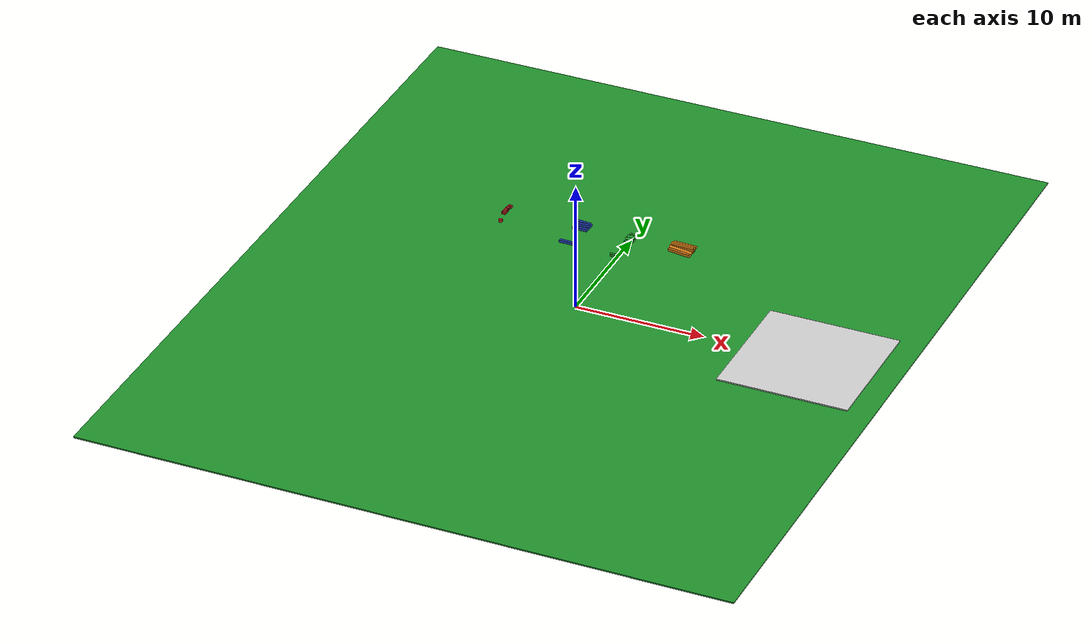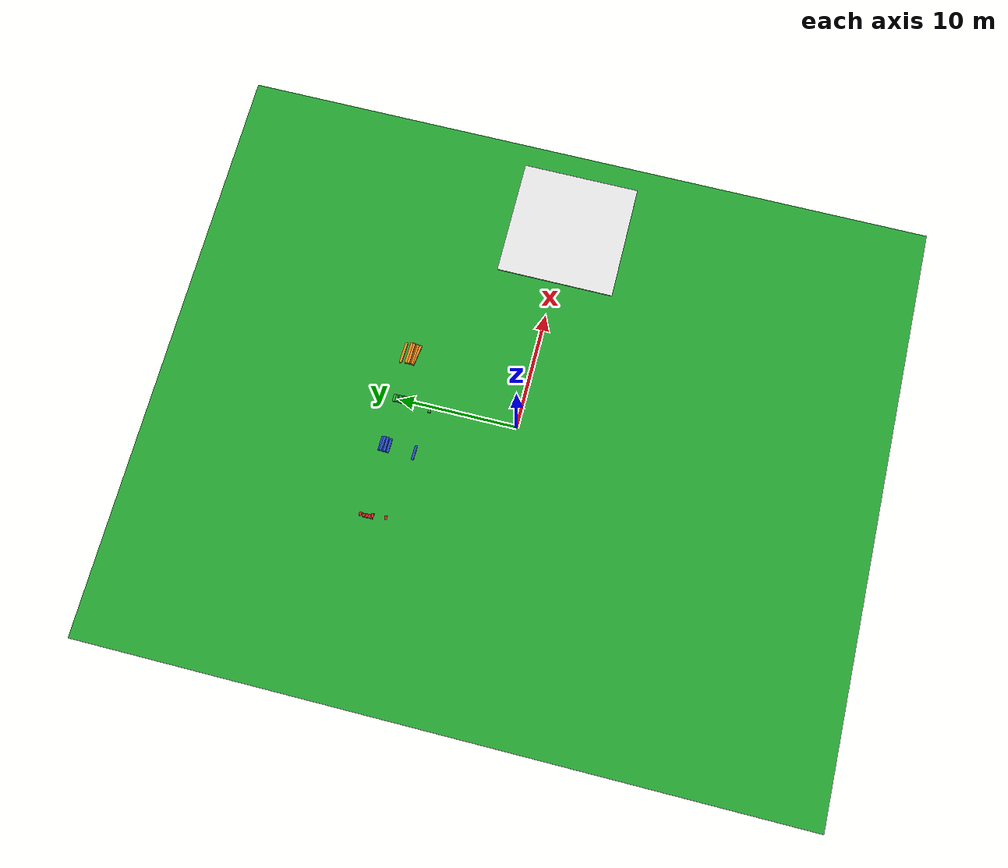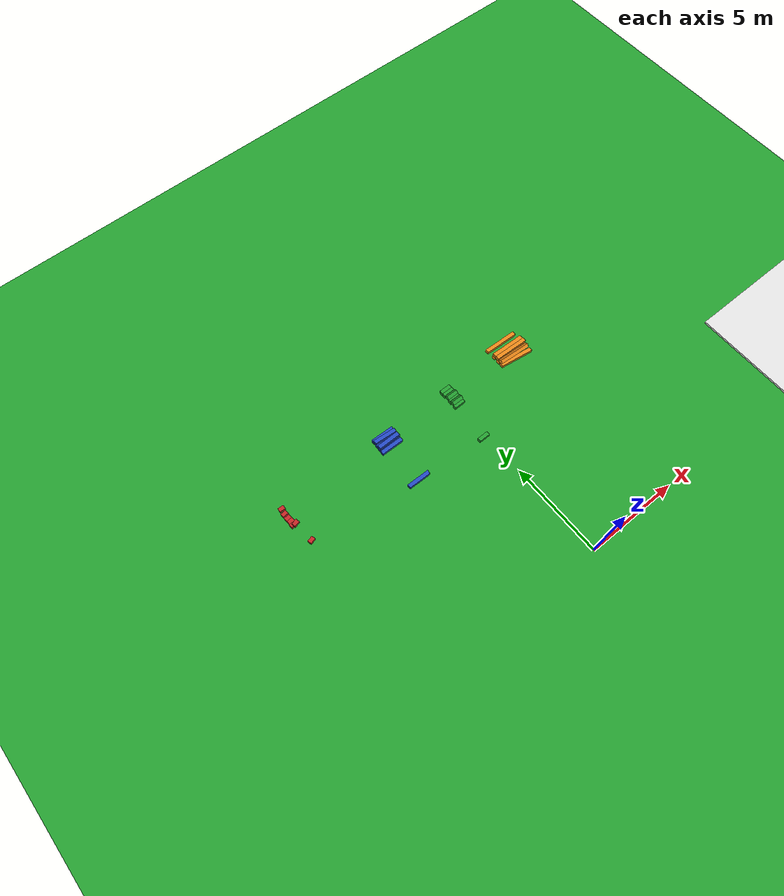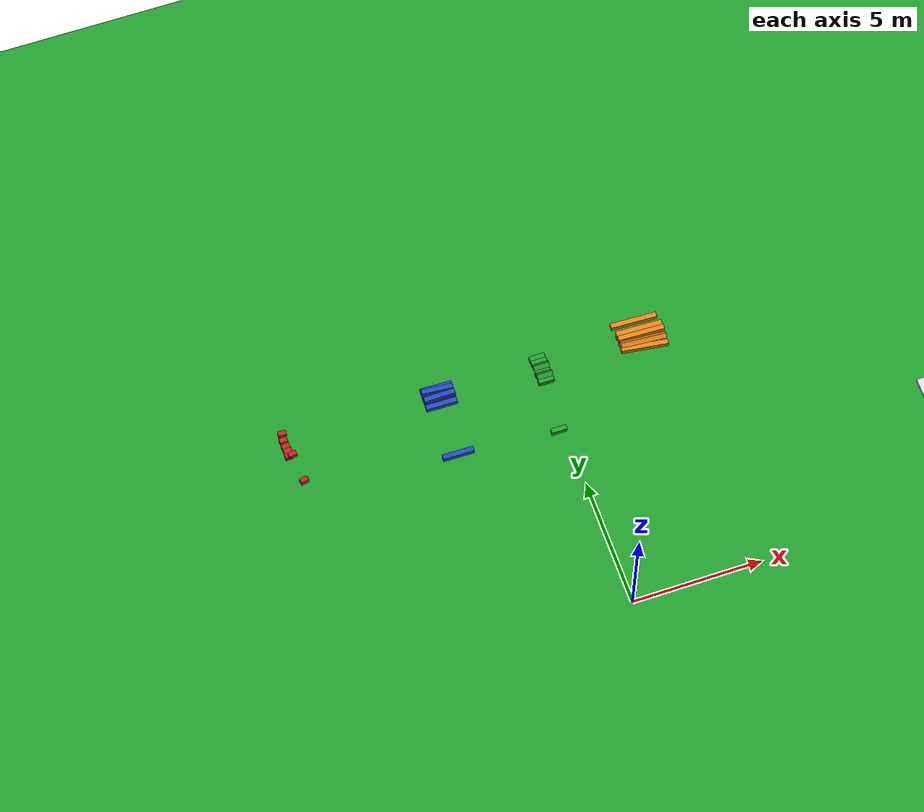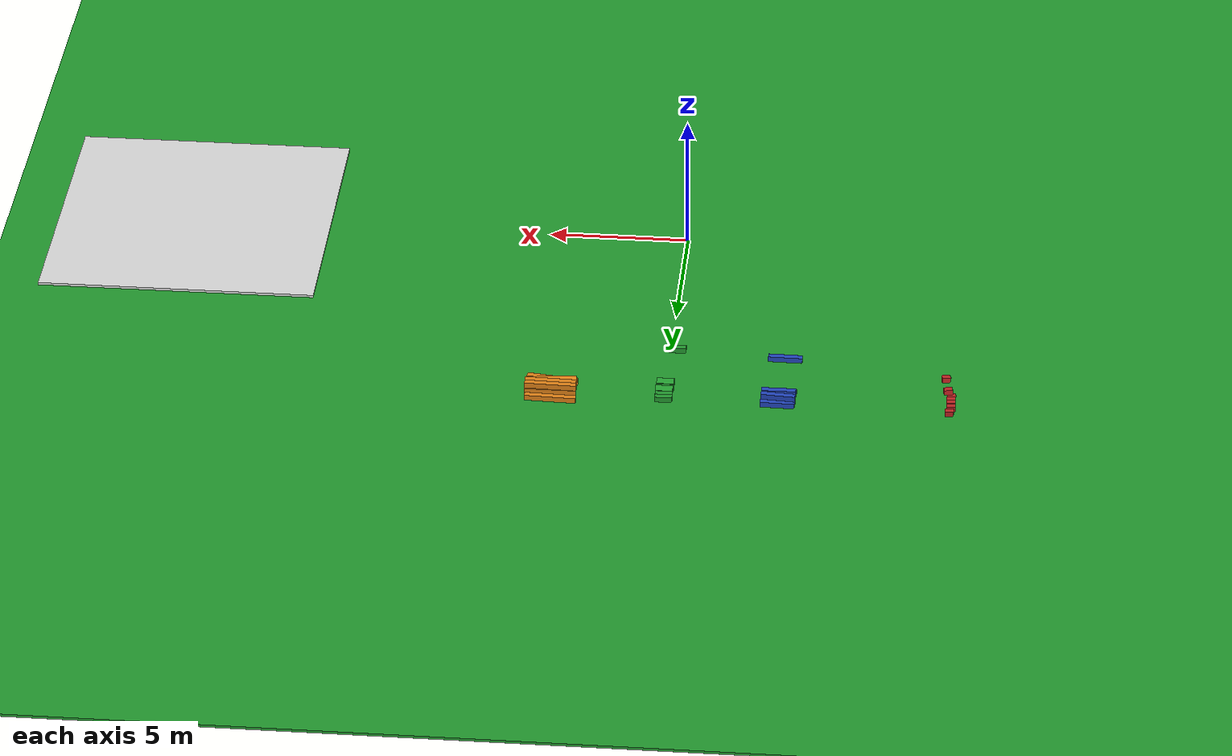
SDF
<sdf version="1.6">
 <world name="default">
  <scene>
   <sky><clouds><speed>12</speed></clouds></sky>
   <ambient>0.4 0.4 0.4 1</ambient>
   <background>0.7 0.7 0.7 1</background>
   <shadows>1</shadows>
  </scene>
  <light name="sun" type="directional">
   <pose>0 0 10 0 -0 0</pose>
   <diffuse>0.8 0.8 0.8 1</diffuse>
   <specular>0.2 0.2 0.2 1</specular>
   <attenuation>
    <range>1000</range>
    <constant>0.9</constant>
    <linear>0.01</linear>
    <quadratic>0.001</quadratic>
   </attenuation>
   <direction>-0.5 0.1 -0.9</direction>
  </light>
  <gravity>0 0 -9.8</gravity>
  <magnetic_field>6e-06 2.3e-05 -4.2e-05</magnetic_field>
  <atmosphere type="adiabatic"/>
  <physics name="default_physics" default="0" type="ode">
   <max_step_size>0.001</max_step_size>
   <real_time_factor>1</real_time_factor>
   <real_time_update_rate>1000</real_time_update_rate>
  </physics>
  <scene><ambient>0.4 0.4 0.4 1</ambient><background>0.7 0.7 0.7 1</background><shadows>1</shadows></scene>
  <spherical_coordinates>
   <surface_model>EARTH_WGS84</surface_model>
   <latitude_deg>0</latitude_deg>
   <longitude_deg>0</longitude_deg>
   <elevation>0</elevation>
   <heading_deg>0</heading_deg>
  </spherical_coordinates>
  <model name="Arena50x60">
   <link name="link_0">
    <inertial>
     <mass>1</mass>
     <inertia>
      <ixx>0.166667</ixx>
      <ixy>0</ixy>
      <ixz>0</ixz>
      <iyy>0.166667</iyy>
      <iyz>0</iyz>
      <izz>0.166667</izz>
     </inertia>
    </inertial>
    <visual name="base_visual">
     <geometry><mesh><uri>/home/varun/MBZIRC_Arena/Arena50x60.dae</uri><scale>1 1 1</scale></mesh></geometry>
     <material>
      <lighting>1</lighting>
      <script><name>Gazebo/Green</name><uri>file://media/materials/scripts/gazebo.material</uri></script>
     </material>
    </visual>
    <collision name="collision">
     <geometry><mesh><uri>/home/varun/MBZIRC_Arena/Arena50x60.dae</uri><scale>1 1 1</scale></mesh></geometry>
     <surface>
      <friction>
       <ode><mu>1</mu><mu2>1</mu2><fdir1>0 0 0</fdir1><slip1>0</slip1><slip2>0</slip2></ode>
       <torsional>
        <coefficient>1</coefficient>
        <patch_radius>0</patch_radius>
        <surface_radius>0</surface_radius>
        <use_patch_radius>1</use_patch_radius>
        <ode><slip>0</slip></ode>
       </torsional>
      </friction>
      <bounce><restitution_coefficient>0</restitution_coefficient><threshold>1e+06</threshold></bounce>
      <contact>
       <collide_without_contact>0</collide_without_contact>
       <collide_without_contact_bitmask>1</collide_without_contact_bitmask>
       <collide_bitmask>1</collide_bitmask>
       <ode>
        <soft_cfm>0</soft_cfm>
        <soft_erp>0.2</soft_erp>
        <kp>1e+13</kp>
        <kd>1</kd>
        <max_vel>0.01</max_vel>
        <min_depth>0</min_depth>
       </ode>
       <bullet>
        <split_impulse>1</split_impulse>
        <split_impulse_penetration_threshold>-0.01</split_impulse_penetration_threshold>
        <soft_cfm>0</soft_cfm>
        <soft_erp>0.2</soft_erp>
        <kp>1e+13</kp>
        <kd>1</kd>
       </bullet>
      </contact>
     </surface>
    </collision>
   </link>
   <link name="link_1">
    <pose>18.0957 0 0.1 0 -0 0</pose>
    <inertial>
     <mass>1</mass>
     <inertia>
      <ixx>0.166667</ixx>
      <ixy>0</ixy>
      <ixz>0</ixz>
      <iyy>0.166667</iyy>
      <iyz>0</iyz>
      <izz>0.166667</izz>
     </inertia>
    </inertial>
    <visual name="visual">
     <geometry><mesh><uri>/home/varun/MBZIRC_Arena/StartLocation.dae</uri><scale>1 1 1</scale></mesh></geometry>
     <material>
      <lighting>1</lighting>
      <script><uri>file://media/materials/scripts/gazebo.material</uri><name>Gazebo/White</name></script>
      <ambient>0.3 0.3 0.3 1</ambient>
      <diffuse>0.7 0.7 0.7 1</diffuse>
      <specular>0.01 0.01 0.01 1</specular>
      <emissive>0 0 0 1</emissive>
      <shader type="vertex"><normal_map>__default__</normal_map></shader>
     </material>
    </visual>
    <collision name="collision">
     <geometry><mesh><uri>/home/varun/MBZIRC_Arena/StartLocation.dae</uri><scale>1 1 1</scale></mesh></geometry>
     <surface>
      <friction>
       <ode><mu>1</mu><mu2>1</mu2><fdir1>0 0 0</fdir1><slip1>0</slip1><slip2>0</slip2></ode>
       <torsional>
        <coefficient>1</coefficient>
        <patch_radius>0</patch_radius>
        <surface_radius>0</surface_radius>
        <use_patch_radius>1</use_patch_radius>
        <ode><slip>0</slip></ode>
       </torsional>
      </friction>
      <bounce><restitution_coefficient>0</restitution_coefficient><threshold>1e+06</threshold></bounce>
      <contact>
       <collide_without_contact>0</collide_without_contact>
       <collide_without_contact_bitmask>1</collide_without_contact_bitmask>
       <collide_bitmask>1</collide_bitmask>
       <ode>
        <soft_cfm>0</soft_cfm>
        <soft_erp>0.2</soft_erp>
        <kp>1e+13</kp>
        <kd>1</kd>
        <max_vel>0.01</max_vel>
        <min_depth>0</min_depth>
       </ode>
       <bullet>
        <split_impulse>1</split_impulse>
        <split_impulse_penetration_threshold>-0.01</split_impulse_penetration_threshold>
        <soft_cfm>0</soft_cfm>
        <soft_erp>0.2</soft_erp>
        <kp>1e+13</kp>
        <kd>1</kd>
       </bullet>
      </contact>
     </surface>
    </collision>
   </link>
   <static>1</static>
  </model>
  <model name="Red Brick 0">
   <link name="base">
    <inertial>
     <mass>1</mass>
     <inertia>
      <ixx>0.00666667</ixx>
      <ixy>0</ixy>
      <ixz>0</ixz>
      <iyy>0.0108333</iyy>
      <iyz>0</iyz>
      <izz>0.0108333</izz>
     </inertia>
    </inertial>
    <collision name="base_collision"><geometry><box><size>0.3 0.2 0.2</size></box></geometry></collision>
    <visual name="base_visual">
     <geometry><box><size>0.3 0.2 0.2</size></box></geometry>
     <material>
      <script><name>Gazebo/Red</name><uri>file://media/materials/scripts/gazebo.material</uri></script>
     </material>
    </visual>
   </link>
   <pose>-10.0364 10.1873 0.2 0 -0 0.051215</pose>
  </model>
  <model name="Red Brick 1">
   <link name="base">
    <inertial>
     <mass>1</mass>
     <inertia>
      <ixx>0.00666667</ixx>
      <ixy>0</ixy>
      <ixz>0</ixz>
      <iyy>0.0108333</iyy>
      <iyz>0</iyz>
      <izz>0.0108333</izz>
     </inertia>
    </inertial>
    <collision name="base_collision"><geometry><box><size>0.3 0.2 0.2</size></box></geometry></collision>
    <visual name="base_visual">
     <geometry><box><size>0.3 0.2 0.2</size></box></geometry>
     <material>
      <script><name>Gazebo/Red</name><uri>file://media/materials/scripts/gazebo.material</uri></script>
     </material>
    </visual>
   </link>
   <pose>-10.0298 9.92537 0.2 1.5708 1e-06 0.056731</pose>
  </model>
  <model name="Red Brick 2">
   <link name="base">
    <inertial>
     <mass>1</mass>
     <inertia>
      <ixx>0.00666667</ixx>
      <ixy>0</ixy>
      <ixz>0</ixz>
      <iyy>0.0108333</iyy>
      <iyz>0</iyz>
      <izz>0.0108333</izz>
     </inertia>
    </inertial>
    <collision name="base_collision"><geometry><box><size>0.3 0.2 0.2</size></box></geometry></collision>
    <visual name="base_visual">
     <geometry><box><size>0.3 0.2 0.2</size></box></geometry>
     <material>
      <script><name>Gazebo/Red</name><uri>file://media/materials/scripts/gazebo.material</uri></script>
     </material>
    </visual>
   </link>
   <pose>-10.0139 9.72595 0.19999 1.5708 -0 0.056748</pose>
  </model>
  <model name="Red Brick 3">
   <link name="base">
    <inertial>
     <mass>1</mass>
     <inertia>
      <ixx>0.00666667</ixx>
      <ixy>0</ixy>
      <ixz>0</ixz>
      <iyy>0.0108333</iyy>
      <iyz>0</iyz>
      <izz>0.0108333</izz>
     </inertia>
    </inertial>
    <collision name="base_collision"><geometry><box><size>0.3 0.2 0.2</size></box></geometry></collision>
    <visual name="base_visual">
     <geometry><box><size>0.3 0.2 0.2</size></box></geometry>
     <material>
      <script><name>Gazebo/Red</name><uri>file://media/materials/scripts/gazebo.material</uri></script>
     </material>
    </visual>
   </link>
   <pose>-9.90909 9.45249 0.400005 1.5709 0.000222 0.18264</pose>
  </model>
  <model name="Red Brick 4">
   <link name="base">
    <inertial>
     <mass>1</mass>
     <inertia>
      <ixx>0.00666667</ixx>
      <ixy>0</ixy>
      <ixz>0</ixz>
      <iyy>0.0108333</iyy>
      <iyz>0</iyz>
      <izz>0.0108333</izz>
     </inertia>
    </inertial>
    <collision name="base_collision"><geometry><box><size>0.3 0.2 0.2</size></box></geometry></collision>
    <visual name="base_visual">
     <geometry><box><size>0.3 0.2 0.2</size></box></geometry>
     <material>
      <script><name>Gazebo/Red</name><uri>file://media/materials/scripts/gazebo.material</uri></script>
     </material>
    </visual>
   </link>
   <pose>-10.0325 9.52456 0.200002 -3.14157 2.1e-05 0.056765</pose>
  </model>
  <model name="Red Brick 5">
   <link name="base">
    <inertial>
     <mass>1</mass>
     <inertia>
      <ixx>0.00666667</ixx>
      <ixy>0</ixy>
      <ixz>0</ixz>
      <iyy>0.0108333</iyy>
      <iyz>0</iyz>
      <izz>0.0108333</izz>
     </inertia>
    </inertial>
    <collision name="base_collision"><geometry><box><size>0.3 0.2 0.2</size></box></geometry></collision>
    <visual name="base_visual">
     <geometry><box><size>0.3 0.2 0.2</size></box></geometry>
     <material>
      <script><name>Gazebo/Red</name><uri>file://media/materials/scripts/gazebo.material</uri></script>
     </material>
    </visual>
   </link>
   <pose>-9.9948 10.4755 0.199992 -3.14158 -0 -0.055589</pose>
  </model>
  <model name="Red Brick 6">
   <link name="base">
    <inertial>
     <mass>1</mass>
     <inertia>
      <ixx>0.00666667</ixx>
      <ixy>0</ixy>
      <ixz>0</ixz>
      <iyy>0.0108333</iyy>
      <iyz>0</iyz>
      <izz>0.0108333</izz>
     </inertia>
    </inertial>
    <collision name="base_collision"><geometry><box><size>0.3 0.2 0.2</size></box></geometry></collision>
    <visual name="base_visual">
     <geometry><box><size>0.3 0.2 0.2</size></box></geometry>
     <material>
      <script><name>Gazebo/Red</name><uri>file://media/materials/scripts/gazebo.material</uri></script>
     </material>
    </visual>
   </link>
   <pose>-9.80145 8.40446 0.199998 1.57081 2e-06 0.245532</pose>
  </model>
  <model name="Blue Brick 0">
   <link name="base">
    <inertial>
     <mass>1.5</mass>
     <inertia>
      <ixx>0.00666667</ixx>
      <ixy>0</ixy>
      <ixz>0</ixz>
      <iyy>0.123333</iyy>
      <iyz>0</iyz>
      <izz>0.123333</izz>
     </inertia>
    </inertial>
    <collision name="base_collision"><geometry><box><size>1.2 0.2 0.2</size></box></geometry></collision>
    <visual name="base_visual">
     <geometry><box><size>1.2 0.2 0.2</size></box></geometry>
     <material>
      <script><name>Gazebo/Blue</name><uri>file://media/materials/scripts/gazebo.material</uri></script>
     </material>
    </visual>
   </link>
   <pose>-3.99964 9.99206 0.2 1.1e-05 -0 0.006916</pose>
  </model>
  <model name="Blue Brick 1">
   <link name="base">
    <inertial>
     <mass>1.5</mass>
     <inertia>
      <ixx>0.00666667</ixx>
      <ixy>0</ixy>
      <ixz>0</ixz>
      <iyy>0.123333</iyy>
      <iyz>0</iyz>
      <izz>0.123333</izz>
     </inertia>
    </inertial>
    <collision name="base_collision"><geometry><box><size>1.2 0.2 0.2</size></box></geometry></collision>
    <visual name="base_visual">
     <geometry><box><size>1.2 0.2 0.2</size></box></geometry>
     <material>
      <script><name>Gazebo/Blue</name><uri>file://media/materials/scripts/gazebo.material</uri></script>
     </material>
    </visual>
   </link>
   <pose>-4.00137 9.98955 0.399996 -2.8e-05 -0 0.006795</pose>
  </model>
  <model name="Blue Brick 2">
   <link name="base">
    <inertial>
     <mass>1.5</mass>
     <inertia>
      <ixx>0.00666667</ixx>
      <ixy>0</ixy>
      <ixz>0</ixz>
      <iyy>0.123333</iyy>
      <iyz>0</iyz>
      <izz>0.123333</izz>
     </inertia>
    </inertial>
    <collision name="base_collision"><geometry><box><size>1.2 0.2 0.2</size></box></geometry></collision>
    <visual name="base_visual">
     <geometry><box><size>1.2 0.2 0.2</size></box></geometry>
     <material>
      <script><name>Gazebo/Blue</name><uri>file://media/materials/scripts/gazebo.material</uri></script>
     </material>
    </visual>
   </link>
   <pose>-4.0115 9.73944 0.199995 1.57079 -0 -0.017177</pose>
  </model>
  <model name="Blue Brick 3">
   <link name="base">
    <inertial>
     <mass>1.5</mass>
     <inertia>
      <ixx>0.00666667</ixx>
      <ixy>0</ixy>
      <ixz>0</ixz>
      <iyy>0.123333</iyy>
      <iyz>0</iyz>
      <izz>0.123333</izz>
     </inertia>
    </inertial>
    <collision name="base_collision"><geometry><box><size>1.2 0.2 0.2</size></box></geometry></collision>
    <visual name="base_visual">
     <geometry><box><size>1.2 0.2 0.2</size></box></geometry>
     <material>
      <script><name>Gazebo/Blue</name><uri>file://media/materials/scripts/gazebo.material</uri></script>
     </material>
    </visual>
   </link>
   <pose>-3.99911 10.2761 0.4 3.14159 -2e-06 -0.078498</pose>
  </model>
  <model name="Blue Brick 4">
   <link name="base_2">
    <inertial>
     <mass>1.5</mass>
     <inertia>
      <ixx>0.00666667</ixx>
      <ixy>0</ixy>
      <ixz>0</ixz>
      <iyy>0.123333</iyy>
      <iyz>0</iyz>
      <izz>0.123333</izz>
     </inertia>
    </inertial>
    <collision name="base_collision"><geometry><box><size>1.2 0.2 0.2</size></box></geometry></collision>
    <visual name="base_visual">
     <geometry><box><size>1.2 0.2 0.2</size></box></geometry>
     <material>
      <script><name>Gazebo/Blue</name><uri>file://media/materials/scripts/gazebo.material</uri></script>
     </material>
    </visual>
   </link>
   <pose>-4.08721 7.60278 0.199999 -3.14155 -2e-06 -0.01718</pose>
  </model>
  <model name="Blue Brick 5">
   <link name="base">
    <inertial>
     <mass>1.5</mass>
     <inertia>
      <ixx>0.00666667</ixx>
      <ixy>0</ixy>
      <ixz>0</ixz>
      <iyy>0.123333</iyy>
      <iyz>0</iyz>
      <izz>0.123333</izz>
     </inertia>
    </inertial>
    <collision name="base_collision"><geometry><box><size>1.2 0.2 0.2</size></box></geometry></collision>
    <visual name="base_visual">
     <geometry><box><size>1.2 0.2 0.2</size></box></geometry>
     <material>
      <script><name>Gazebo/Blue</name><uri>file://media/materials/scripts/gazebo.material</uri></script>
     </material>
    </visual>
   </link>
   <pose>-3.99762 10.1927 0.2 -1e-06 -2e-06 0.006797</pose>
  </model>
  <model name="Blue Brick 6">
   <link name="base">
    <inertial>
     <mass>1.5</mass>
     <inertia>
      <ixx>0.00666667</ixx>
      <ixy>0</ixy>
      <ixz>0</ixz>
      <iyy>0.123333</iyy>
      <iyz>0</iyz>
      <izz>0.123333</izz>
     </inertia>
    </inertial>
    <collision name="base_collision"><geometry><box><size>1.2 0.2 0.2</size></box></geometry></collision>
    <visual name="base_visual">
     <geometry><box><size>1.2 0.2 0.2</size></box></geometry>
     <material>
      <script><name>Gazebo/Blue</name><uri>file://media/materials/scripts/gazebo.material</uri></script>
     </material>
    </visual>
   </link>
   <pose>-3.98652 10.4473 0.2 -1.57079 -0 -0.026068</pose>
  </model>
  <model name="Orange Brick 0">
   <link name="base">
    <inertial>
     <mass>2</mass>
     <inertia>
      <ixx>0.00666667</ixx>
      <ixy>0</ixy>
      <ixz>0</ixz>
      <iyy>0.273333</iyy>
      <iyz>0</iyz>
      <izz>0.273333</izz>
     </inertia>
    </inertial>
    <collision name="base_collision"><geometry><box><size>1.8 0.2 0.2</size></box></geometry></collision>
    <visual name="base_visual">
     <geometry><box><size>1.8 0.2 0.2</size></box></geometry>
     <material>
      <script><name>Gazebo/Orange</name><uri>file://media/materials/scripts/gazebo.material</uri></script>
     </material>
    </visual>
   </link>
   <pose>3.99785 10.292 0.2 3e-06 0 -0.004907</pose>
  </model>
  <model name="Orange Brick 1">
   <link name="base">
    <inertial>
     <mass>2</mass>
     <inertia>
      <ixx>0.00666667</ixx>
      <ixy>0</ixy>
      <ixz>0</ixz>
      <iyy>0.273333</iyy>
      <iyz>0</iyz>
      <izz>0.273333</izz>
     </inertia>
    </inertial>
    <collision name="base_collision"><geometry><box><size>1.8 0.2 0.2</size></box></geometry></collision>
    <visual name="base_visual">
     <geometry><box><size>1.8 0.2 0.2</size></box></geometry>
     <material>
      <script><name>Gazebo/Orange</name><uri>file://media/materials/scripts/gazebo.material</uri></script>
     </material>
    </visual>
   </link>
   <pose>3.99331 10.2569 0.4 1.5708 -0 -0.031553</pose>
  </model>
  <model name="Orange Brick 2">
   <link name="base">
    <inertial>
     <mass>2</mass>
     <inertia>
      <ixx>0.00666667</ixx>
      <ixy>0</ixy>
      <ixz>0</ixz>
      <iyy>0.273333</iyy>
      <iyz>0</iyz>
      <izz>0.273333</izz>
     </inertia>
    </inertial>
    <collision name="base_collision"><geometry><box><size>1.8 0.2 0.2</size></box></geometry></collision>
    <visual name="base_visual">
     <geometry><box><size>1.8 0.2 0.2</size></box></geometry>
     <material>
      <script><name>Gazebo/Orange</name><uri>file://media/materials/scripts/gazebo.material</uri></script>
     </material>
    </visual>
   </link>
   <pose>4.0024 10.0139 0.200004 1.57075 -0 0.040676</pose>
  </model>
  <model name="Orange Brick 3">
   <link name="base">
    <inertial>
     <mass>2</mass>
     <inertia>
      <ixx>0.00666667</ixx>
      <ixy>0</ixy>
      <ixz>0</ixz>
      <iyy>0.273333</iyy>
      <iyz>0</iyz>
      <izz>0.273333</izz>
     </inertia>
    </inertial>
    <collision name="base_collision"><geometry><box><size>1.8 0.2 0.2</size></box></geometry></collision>
    <visual name="base_visual">
     <geometry><box><size>1.8 0.2 0.2</size></box></geometry>
     <material>
      <script><name>Gazebo/Orange</name><uri>file://media/materials/scripts/gazebo.material</uri></script>
     </material>
    </visual>
   </link>
   <pose>4.00091 10.0562 0.400002 -3.4e-05 -3e-06 -0.031797</pose>
  </model>
  <model name="Orange Brick 4">
   <link name="base">
    <inertial>
     <mass>2</mass>
     <inertia>
      <ixx>0.00666667</ixx>
      <ixy>0</ixy>
      <ixz>0</ixz>
      <iyy>0.273333</iyy>
      <iyz>0</iyz>
      <izz>0.273333</izz>
     </inertia>
    </inertial>
    <collision name="base_collision"><geometry><box><size>1.8 0.2 0.2</size></box></geometry></collision>
    <visual name="base_visual">
     <geometry><box><size>1.8 0.2 0.2</size></box></geometry>
     <material>
      <script><name>Gazebo/Orange</name><uri>file://media/materials/scripts/gazebo.material</uri></script>
     </material>
    </visual>
   </link>
   <pose>3.95322 10.7315 0.2 3.14159 -0 -0.037014</pose>
  </model>
  <model name="Orange Brick 5">
   <link name="base">
    <inertial>
     <mass>2</mass>
     <inertia>
      <ixx>0.00666667</ixx>
      <ixy>0</ixy>
      <ixz>0</ixz>
      <iyy>0.273333</iyy>
      <iyz>0</iyz>
      <izz>0.273333</izz>
     </inertia>
    </inertial>
    <collision name="base_collision"><geometry><box><size>1.8 0.2 0.2</size></box></geometry></collision>
    <visual name="base_visual">
     <geometry><box><size>1.8 0.2 0.2</size></box></geometry>
     <material>
      <script><name>Gazebo/Orange</name><uri>file://media/materials/scripts/gazebo.material</uri></script>
     </material>
    </visual>
   </link>
   <pose>3.98354 9.59774 0.200007 1.57086 -3e-06 -0.135601</pose>
  </model>
  <model name="Orange Brick 6">
   <link name="base">
    <inertial>
     <mass>2</mass>
     <inertia>
      <ixx>0.00666667</ixx>
      <ixy>0</ixy>
      <ixz>0</ixz>
      <iyy>0.273333</iyy>
      <iyz>0</iyz>
      <izz>0.273333</izz>
     </inertia>
    </inertial>
    <collision name="base_collision"><geometry><box><size>1.8 0.2 0.2</size></box></geometry></collision>
    <visual name="base_visual">
     <geometry><box><size>1.8 0.2 0.2</size></box></geometry>
     <material>
      <script><name>Gazebo/Orange</name><uri>file://media/materials/scripts/gazebo.material</uri></script>
     </material>
    </visual>
   </link>
   <pose>4.00405 9.81264 0.334084 0.884343 0.086764 -0.030235</pose>
  </model>
  <model name="Green Brick 0">
   <link name="base">
    <inertial>
     <mass>1</mass>
     <inertia>
      <ixx>0.00666667</ixx>
      <ixy>0</ixy>
      <ixz>0</ixz>
      <iyy>0.0333333</iyy>
      <iyz>0</iyz>
      <izz>0.0333333</izz>
     </inertia>
    </inertial>
    <collision name="base_collision"><geometry><box><size>0.6 0.2 0.2</size></box></geometry></collision>
    <visual name="base_visual">
     <geometry><box><size>0.6 0.2 0.2</size></box></geometry>
     <material>
      <script><name>Gazebo/Green</name><uri>file://media/materials/scripts/gazebo.material</uri></script>
     </material>
    </visual>
   </link>
   <pose>0.008738 10.2272 0.200001 -7e-06 -1e-06 0.002715</pose>
  </model>
  <model name="Green Brick 1">
   <link name="base">
    <inertial>
     <mass>1</mass>
     <inertia>
      <ixx>0.00666667</ixx>
      <ixy>0</ixy>
      <ixz>0</ixz>
      <iyy>0.0333333</iyy>
      <iyz>0</iyz>
      <izz>0.0333333</izz>
     </inertia>
    </inertial>
    <collision name="base_collision"><geometry><box><size>0.6 0.2 0.2</size></box></geometry></collision>
    <visual name="base_visual">
     <geometry><box><size>0.6 0.2 0.2</size></box></geometry>
     <material>
      <script><name>Gazebo/Green</name><uri>file://media/materials/scripts/gazebo.material</uri></script>
     </material>
    </visual>
   </link>
   <pose>0.005565 10.0105 0.325342 0.779402 0.003187 -0.000525</pose>
  </model>
  <model name="Green Brick 2">
   <link name="base">
    <inertial>
     <mass>1</mass>
     <inertia>
      <ixx>0.00666667</ixx>
      <ixy>0</ixy>
      <ixz>0</ixz>
      <iyy>0.0333333</iyy>
      <iyz>0</iyz>
      <izz>0.0333333</izz>
     </inertia>
    </inertial>
    <collision name="base_collision"><geometry><box><size>0.6 0.2 0.2</size></box></geometry></collision>
    <visual name="base_visual">
     <geometry><box><size>0.6 0.2 0.2</size></box></geometry>
     <material>
      <script><name>Gazebo/Green</name><uri>file://media/materials/scripts/gazebo.material</uri></script>
     </material>
    </visual>
   </link>
   <pose>0.00255 9.61129 0.357201 2.37518 0.002564 -0.006116</pose>
  </model>
  <model name="Green Brick 3">
   <link name="base">
    <inertial>
     <mass>1</mass>
     <inertia>
      <ixx>0.00666667</ixx>
      <ixy>0</ixy>
      <ixz>0</ixz>
      <iyy>0.0333333</iyy>
      <iyz>0</iyz>
      <izz>0.0333333</izz>
     </inertia>
    </inertial>
    <collision name="base_collision"><geometry><box><size>0.6 0.2 0.2</size></box></geometry></collision>
    <visual name="base_visual">
     <geometry><box><size>0.6 0.2 0.2</size></box></geometry>
     <material>
      <script><name>Gazebo/Green</name><uri>file://media/materials/scripts/gazebo.material</uri></script>
     </material>
    </visual>
   </link>
   <pose>0.000784 9.42653 0.2 1.5708 -0 -0.008774</pose>
  </model>
  <model name="Green Brick 4">
   <link name="base">
    <inertial>
     <mass>1</mass>
     <inertia>
      <ixx>0.00666667</ixx>
      <ixy>0</ixy>
      <ixz>0</ixz>
      <iyy>0.0333333</iyy>
      <iyz>0</iyz>
      <izz>0.0333333</izz>
     </inertia>
    </inertial>
    <collision name="base_collision"><geometry><box><size>0.6 0.2 0.2</size></box></geometry></collision>
    <visual name="base_visual">
     <geometry><box><size>0.6 0.2 0.2</size></box></geometry>
     <material>
      <script><name>Gazebo/Green</name><uri>file://media/materials/scripts/gazebo.material</uri></script>
     </material>
    </visual>
   </link>
   <pose>0.001908 10.4272 0.2 -1.5708 -1e-06 0.002724</pose>
  </model>
  <model name="Green Brick 5">
   <link name="base">
    <inertial>
     <mass>1</mass>
     <inertia>
      <ixx>0.00666667</ixx>
      <ixy>0</ixy>
      <ixz>0</ixz>
      <iyy>0.0333333</iyy>
      <iyz>0</iyz>
      <izz>0.0333333</izz>
     </inertia>
    </inertial>
    <collision name="base_collision"><geometry><box><size>0.6 0.2 0.2</size></box></geometry></collision>
    <visual name="base_visual">
     <geometry><box><size>0.6 0.2 0.2</size></box></geometry>
     <material>
      <script><name>Gazebo/Green</name><uri>file://media/materials/scripts/gazebo.material</uri></script>
     </material>
    </visual>
   </link>
   <pose>0.002327 9.79502 0.2 7e-06 2e-06 -0.003676</pose>
  </model>
  <model name="Green Brick 6">
   <link name="base_4">
    <inertial>
     <mass>1</mass>
     <inertia>
      <ixx>0.00666667</ixx>
      <ixy>0</ixy>
      <ixz>0</ixz>
      <iyy>0.0333333</iyy>
      <iyz>0</iyz>
      <izz>0.0333333</izz>
     </inertia>
    </inertial>
    <collision name="base_collision"><geometry><box><size>0.6 0.2 0.2</size></box></geometry></collision>
    <visual name="base_visual">
     <geometry><box><size>0.6 0.2 0.2</size></box></geometry>
     <material>
      <script><name>Gazebo/Green</name><uri>file://media/materials/scripts/gazebo.material</uri></script>
     </material>
    </visual>
   </link>
   <pose>-0.241784 7.33206 0.199992 1.57077 -0 -0.003782</pose>
  </model>
 </world>
</sdf>
